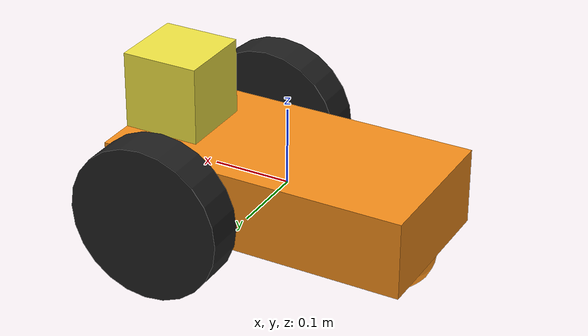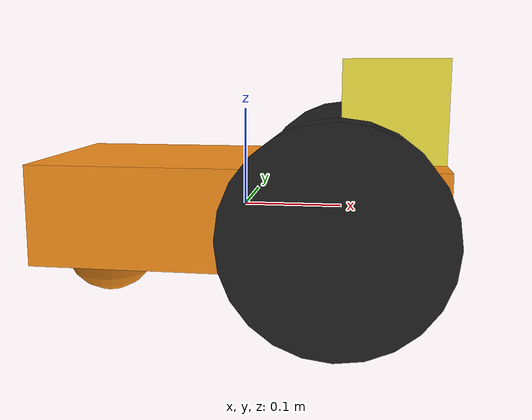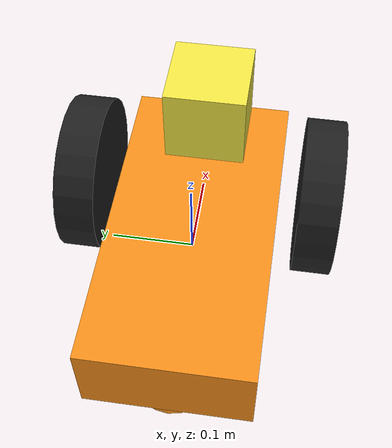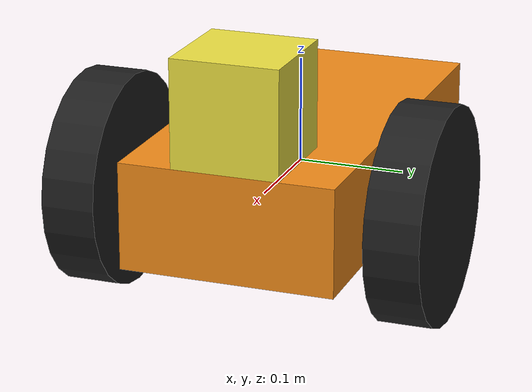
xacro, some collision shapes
<?xml version='1.0'?>
<robot xmlns:xacro="http://www.ros.org/wiki/xacro" name = "myrobot">
 <!--xacro:include filename="$(find my_robot)/src/urdf/hokuyo_utm30lx.urdf.xacro"/-->

  <xacro:include filename="$(find myrobot_description)/urdf/myrobot.gazebo" />
  <xacro:include filename="$(find myrobot_description)/urdf/materials.xacro" />
  <xacro:include filename="$(find myrobot_description)/urdf/macros.xacro" />

       <link name='chassis'>

        <inertial>
         <mass value="15.0"/>
         <origin xyz="0.0 0 0.1" rpy=" 0 0 0"/>
         <inertia
          ixx="0.1" ixy="0" ixz="0"
          iyy="0.1" iyz="0"
          izz="0.1"
         />
        </inertial>

        <collision name='collision'>
         <geometry>
          <box size=".4 .2 .1"/>
         </geometry>
        </collision>

        <visual name='chassis_visual'>
         <origin xyz="0 0 0" rpy=" 0 0 0"/>
         <geometry>
          <box size=".4 .2 .1"/>
         </geometry>
        </visual>

        <collision name='caster_collision'>
         <origin xyz="-0.15 0 -0.05" rpy=" 0 0 0"/>
         <geometry>
          <sphere radius="0.05"/>
         </geometry>
         <surface>
          <friction>
           <ode>
            <mu>0</mu>
            <mu2>0</mu2>
            <slip1>1.0</slip1>
            <slip2>1.0</slip2>
           </ode>
          </friction>
         </surface>
        </collision>

        <visual name='caster_visual'>
         <origin xyz="-0.15 0 -0.05" rpy=" 0 0 0"/>
         <geometry>
          <sphere radius="0.05"/>
         </geometry>
        </visual>

       </link>

        <link name='left_wheel'>
    <!--origin xyz="0.1 0.13 0.1" rpy="0 1.5707 1.5707"/-->
         <collision name='collision'>
          <origin xyz="0 0 0" rpy="0 1.5707 1.5707"/>
           <geometry>
            <cylinder radius="0.1" length="0.05"/>
           </geometry>
         </collision>

         <visual name='left_wheel_visual'>
          <origin xyz="0 0 0" rpy="0 1.5707 1.5707"/>
           <geometry>
            <cylinder radius="0.1" length="0.05"/>
           </geometry>
         </visual>

         <inertial>
          <origin xyz="0 0 0" rpy="0 1.5707 1.5707"/>
           <mass value="5"/>
           <!--cylinder_inertia m="5" r="0.1" h="0.05"/-->
           <inertia
            ixx="0.1" ixy="0.0" ixz="0.0"
            iyy="0.1" iyz="0.0"
            izz="0.1"/>
         </inertial>
        </link>

        <link name='right_wheel'>
    <!--origin xyz="0.1 -0.13 0.1" rpy="0 1.5707 1.5707"/-->
         <collision name='collision'>
          <origin xyz="0 0 0" rpy="0 1.5707 1.5707"/>
           <geometry>
            <cylinder radius="0.1" length="0.05"/>
           </geometry>
         </collision>

         <visual name='right_wheel_visual'>
          <origin xyz="0 0 0" rpy="0 1.5707 1.5707"/>
           <geometry>
            <cylinder radius="0.1" length="0.05"/>
           </geometry>
         </visual>

         <inertial>
          <origin xyz="0 0 0" rpy="0 1.5707 1.5707"/>
          <mass value="5"/>
          <!--cylinder_inertia m="5" r="0.1" h="0.05"/-->
          <inertia
           ixx="0.1" ixy="0.0" ixz="0.0"
           iyy="0.1" iyz="0.0"
           izz="0.1"/>
         </inertial>
        </link>

        <joint name="left_wheel_hinge" type="continuous">
          <child link = "left_wheel"/>
          <parent link="chassis"/>
          <axis xyz="0 1 0"/>
          <origin xyz="0.1 0.15 0" rpy="0 0 0"/>
          <limit effort="10000" velocity="1000"/>
          <joint_properties damping="1.0" friction="1.0"/>
        </joint>

        <joint name="right_wheel_hinge" type="continuous" >
          <child link = "right_wheel"/>
          <parent link ="chassis"/>
          <axis xyz="0 1 0"/>
          <origin xyz="0.1 -0.15 0" rpy="0 0 0"/>
          <joint_properties damping="1.0" friction="1.0"/>
          <limit effort="10000" velocity="1000"/>
        </joint>

        <transmission name="left_wheel_tran">
         <type>transmission_interface/SimpleTransmission</type>
          <joint name="left_wheel_hinge">
           <hardwareInterface>EffortJointInterface</hardwareInterface>
          </joint>
          <actuator name="left_wheel_motor">
           <hardwareInterface>EffortJointInterface</hardwareInterface>
            <mechanicalReduction>10</mechanicalReduction>
          </actuator>
        </transmission>

        <transmission name="right_wheel_tran">
         <type>transmission_interface/SimpleTransmission</type>
          <joint name="right_wheel_hinge">
           <hardwareInterface>EffortJointInterface</hardwareInterface>
          </joint>
          <actuator name="right_wheel_motor">
           <hardwareInterface>EffortJointInterface</hardwareInterface>
            <mechanicalReduction>10</mechanicalReduction>
          </actuator>
        </transmission>

        <link name='hokuyo'>
         <collision name = "collision">
          <origin xyz="0 0 0" rpy="0 0 0"/>
           <geometry>
            <box size="0.1 0.1 0.1"/>
           </geometry>
         </collision>

         <visual>
          <origin xyz="0 0 0" rpy="0 0 0"/>
           <geometry>
            <mesh filename="package://myrobot_description/meshes/hokuyo_utm30lx/hokuyo_utm_30lx.dae"/>
           </geometry>
         </visual>

            <inertial>
             <mass value="1e-5" />
             <origin xyz="0 0 0.0" rpy="0 0 0"/>
             <inertia ixx="1e-6" ixy="0" ixz="0" iyy="1e-6" iyz="0" izz="1e-6" />
            </inertial>
        </link>

        <joint name="hokuyo_joint" type="fixed">
         <child link ="hokuyo"/>
         <parent link ="chassis"/>
         <axis xyz="0 0 1"/>
         <origin xyz="0.15 0 0.1" rpy="0 0 3.14" />
        </joint>
</robot>
